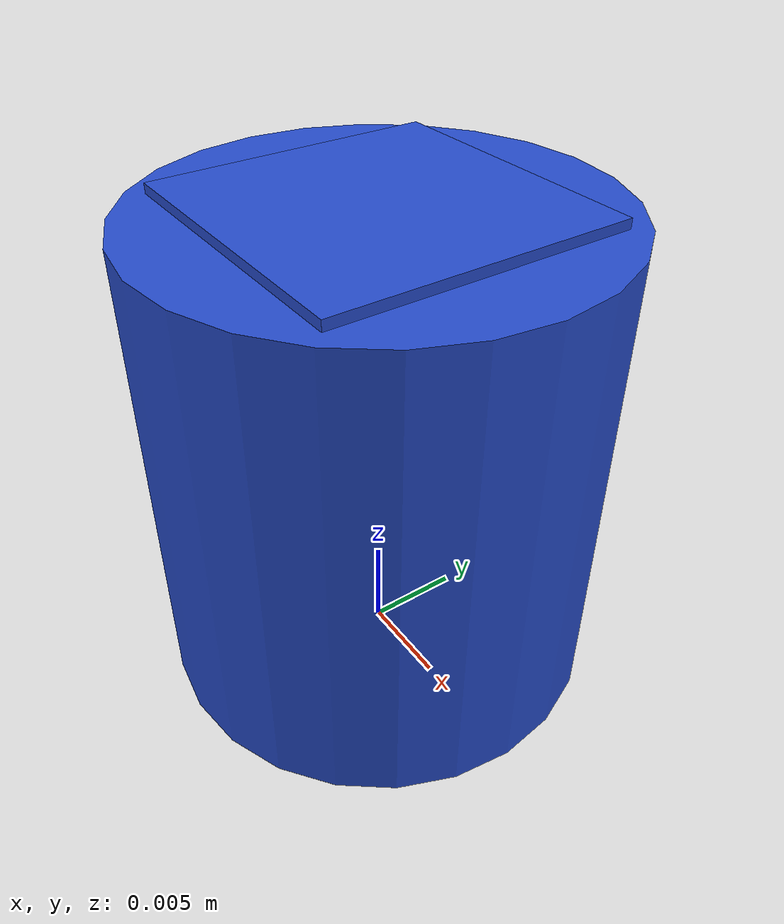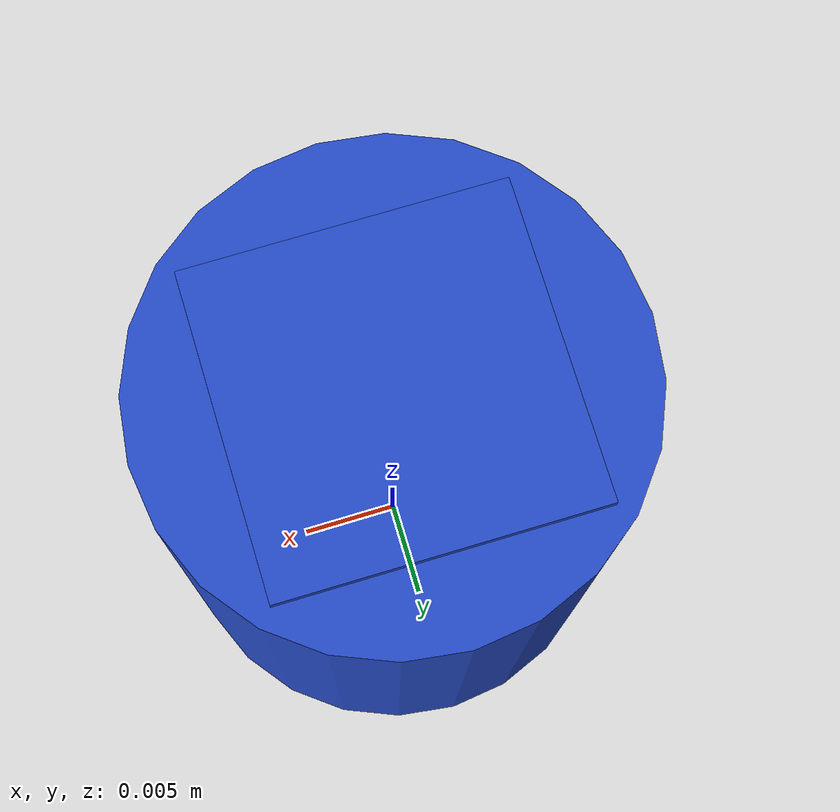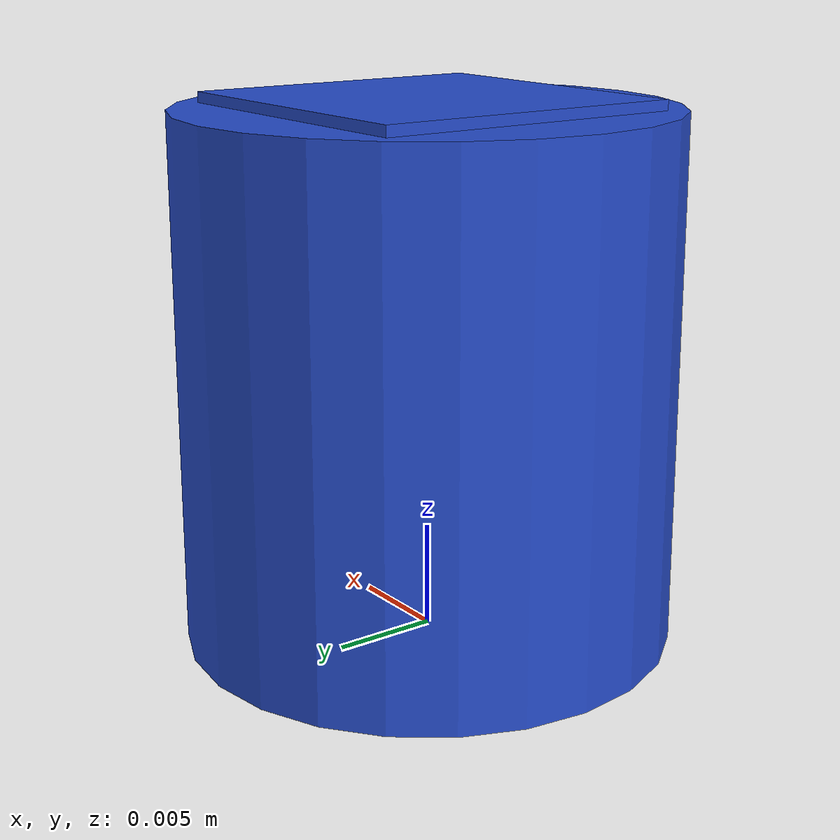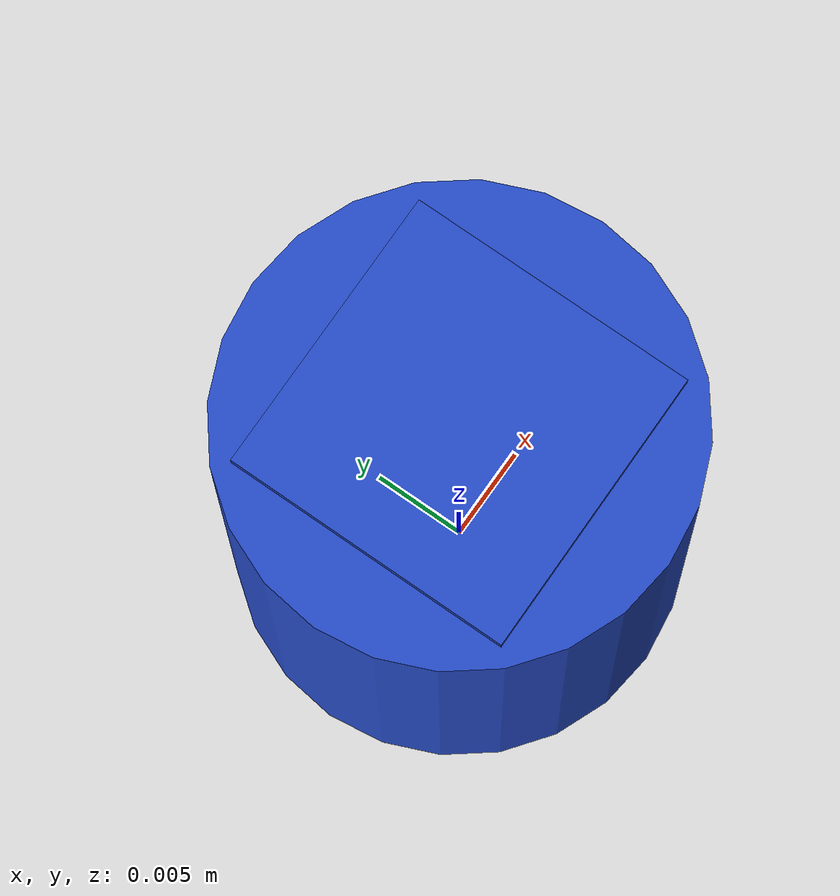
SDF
<?xml version="1.0" ?>
<sdf version="1.6">
  <model name="Blue_Checker_King">
    <static>false</static>
    <link name="blue_checker">
      <pose>0 0 0.0125 0 0 0</pose>
      <collision name="collision">
        <geometry>
            <cylinder>
              <radius>.0116</radius>
              <length>.025</length>
            </cylinder>
        </geometry>
        <surface>
            <friction>
            <ode>
                <mu>0.01</mu>
                <mu2>0.01</mu2>
            </ode>
            </friction>
        </surface>
      </collision>
      <visual name="visual">
        <cast_shadows>false</cast_shadows>
        <geometry>
            <cylinder>
              <radius>.0116</radius>
              <length>.025</length>
            </cylinder>
        </geometry>
        <material>
        <script>
            <uri>file://media/materials/scripts/gazebo.material</uri>
            <name>Gazebo/Blue</name>
        </script>
        </material>
      </visual>
      <visual name="visual2">
      <pose>0 0 0.0125 0 0 0</pose>
        <cast_shadows>false</cast_shadows>
        <geometry>
          <box>
            <size>.015 0.015 .001</size>
          </box>
        </geometry>
        <material>
            <script>
                <uri>model://blue_checker_king/materials/scripts</uri>
                <uri>model://blue_checker_king/materials/textures</uri>
                <name>Checkers/Blue_King</name>
            </script>
        </material>
      </visual>
     <inertial>
        <mass>0.021</mass>
        <inertia>
          <ixx>0.000002</ixx>
          <ixy>0.0</ixy>
          <ixz>0.0</ixz>
          <iyy>0.000002</iyy>
          <iyz>0.0</iyz>
          <izz>0.000002</izz>
        </inertia>
      </inertial>
    </link>
  </model>

</sdf>
